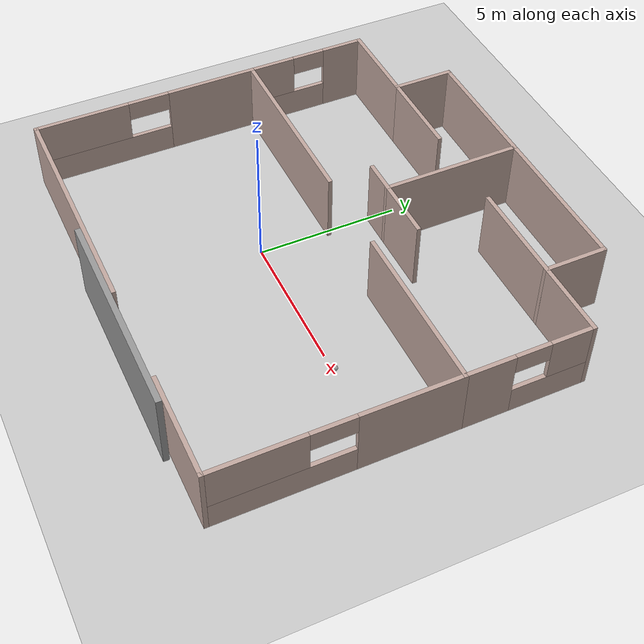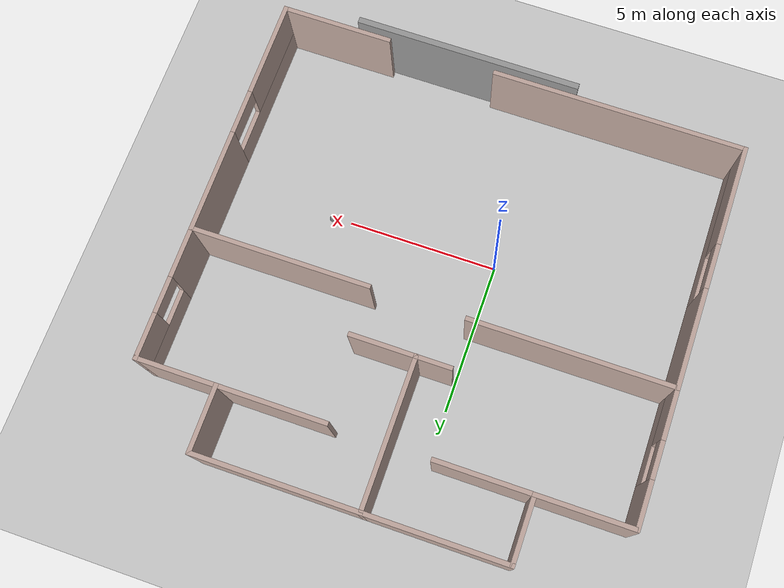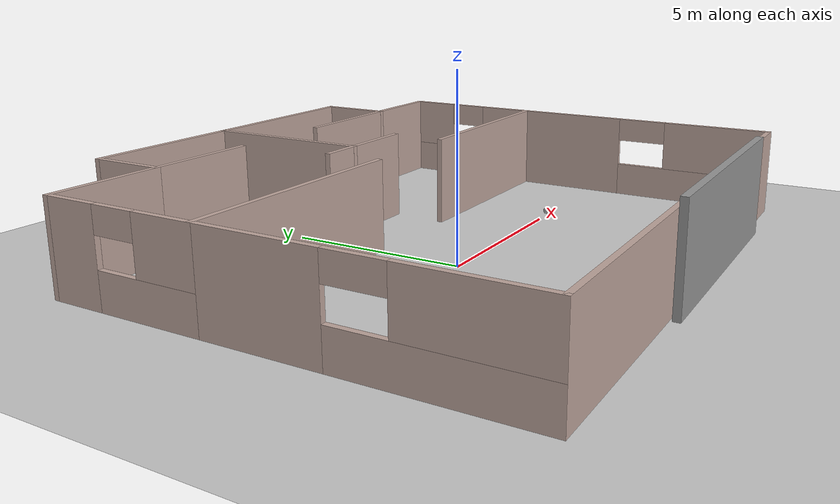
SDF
<sdf version="1.6">
 <world name="default">
  <light name="sun" type="directional">
   <pose>0 0 10 0 -0 0</pose>
   <diffuse>0.8 0.8 0.8 1</diffuse>
   <specular>0.2 0.2 0.2 1</specular>
   <attenuation>
    <range>1000</range>
    <constant>0.9</constant>
    <linear>0.01</linear>
    <quadratic>0.001</quadratic>
   </attenuation>
   <direction>-0.5 0.1 -0.9</direction>
  </light>
  <model name="ground_plane">
   <static>1</static>
   <link name="link">
    <collision name="collision">
     <geometry><plane><normal>0 0 1</normal><size>100 100</size></plane></geometry>
     <surface>
      <contact><collide_bitmask>65535</collide_bitmask></contact>
      <friction><ode><mu>100</mu><mu2>50</mu2></ode></friction>
     </surface>
    </collision>
    <visual name="visual">
     <cast_shadows>0</cast_shadows>
     <geometry><plane><normal>0 0 1</normal><size>100 100</size></plane></geometry>
     <material>
      <script><uri>file://media/materials/scripts/gazebo.material</uri><name>Gazebo/Grey</name></script>
     </material>
    </visual>
   </link>
  </model>
  <gravity>0 0 -9.8</gravity>
  <magnetic_field>6e-06 2.3e-05 -4.2e-05</magnetic_field>
  <atmosphere type="adiabatic"/>
  <physics name="default_physics" default="0" type="ode">
   <max_step_size>0.001</max_step_size>
   <real_time_factor>1</real_time_factor>
   <real_time_update_rate>1000</real_time_update_rate>
  </physics>
  <scene><ambient>0.4 0.4 0.4 1</ambient><background>0.7 0.7 0.7 1</background><shadows>1</shadows></scene>
  <spherical_coordinates>
   <surface_model>EARTH_WGS84</surface_model>
   <latitude_deg>0</latitude_deg>
   <longitude_deg>0</longitude_deg>
   <elevation>0</elevation>
   <heading_deg>0</heading_deg>
  </spherical_coordinates>
  <model name="building">
   <pose>1.35926 1.63717 0 0 -0 0</pose>
   <link name="Wall_22">
    <collision name="Wall_22_Collision">
     <geometry><box><size>5 0.15 2.5</size></box></geometry>
     <pose>0 0 1.25 0 -0 0</pose>
    </collision>
    <visual name="Wall_22_Visual">
     <pose>0 0 1.25 0 -0 0</pose>
     <geometry><box><size>5 0.15 2.5</size></box></geometry>
     <material>
      <script><uri>file://media/materials/scripts/gazebo.material</uri><name>Gazebo/Grey</name></script>
      <ambient>0.760784 0.662745 0.627451 1</ambient>
     </material>
     <meta><layer>0</layer></meta>
    </visual>
    <pose>-0.124998 4.85011 0 0 -0 1.57074</pose>
   </link>
   <link name="Wall_50">
    <collision name="Wall_50_Collision">
     <geometry><box><size>4.75 0.15 2.5</size></box></geometry>
     <pose>0 0 1.25 0 -0 0</pose>
    </collision>
    <visual name="Wall_50_Visual">
     <pose>0 0 1.25 0 -0 0</pose>
     <geometry><box><size>4.75 0.15 2.5</size></box></geometry>
     <material>
      <script><uri>file://media/materials/scripts/gazebo.material</uri><name>Gazebo/Grey</name></script>
      <ambient>0.760784 0.662745 0.627451 1</ambient>
     </material>
     <meta><layer>0</layer></meta>
    </visual>
    <pose>-2.42486 7.27489 0 0 -0 3.14159</pose>
   </link>
   <link name="Wall_51">
    <collision name="Wall_51_Collision">
     <geometry><box><size>2.25 0.15 2.5</size></box></geometry>
     <pose>0 0 1.25 0 -0 0</pose>
    </collision>
    <visual name="Wall_51_Visual">
     <pose>0 0 1.25 0 -0 0</pose>
     <geometry><box><size>2.25 0.15 2.5</size></box></geometry>
     <material>
      <script><uri>file://media/materials/scripts/gazebo.material</uri><name>Gazebo/Grey</name></script>
      <ambient>0.760784 0.662745 0.627451 1</ambient>
     </material>
     <meta><layer>0</layer></meta>
    </visual>
    <pose>-4.72486 6.22489 0 0 0 -1.5708</pose>
   </link>
   <link name="Wall_54">
    <collision name="Wall_54_Collision">
     <geometry><box><size>3.25 0.15 2.5</size></box></geometry>
     <pose>0 0 1.25 0 -0 0</pose>
    </collision>
    <visual name="Wall_54_Visual">
     <pose>0 0 1.25 0 -0 0</pose>
     <geometry><box><size>3.25 0.15 2.5</size></box></geometry>
     <material>
      <script><uri>file://media/materials/scripts/gazebo.material</uri><name>Gazebo/Grey</name></script>
      <ambient>0.760784 0.662745 0.627451 1</ambient>
     </material>
     <meta><layer>0</layer></meta>
    </visual>
    <pose>-6.27486 5.17489 0 0 -0 3.14159</pose>
   </link>
   <link name="Wall_55">
    <pose>-7.82486 2.99989 0 0 0 -1.5708</pose>
    <visual name="Wall_55_Visual_0">
     <pose>-1.4601 0 1.25 0 -0 0</pose>
     <geometry><box><size>1.5798 0.15 2.5</size></box></geometry>
     <material>
      <script><uri>file://media/materials/scripts/gazebo.material</uri><name>Gazebo/Grey</name></script>
      <ambient>0.760784 0.662745 0.627451 1</ambient>
     </material>
     <meta><layer>0</layer></meta>
    </visual>
    <collision name="Wall_55_Collision_0">
     <geometry><box><size>1.5798 0.15 2.5</size></box></geometry>
     <pose>-1.4601 0 1.25 0 -0 0</pose>
    </collision>
    <visual name="Wall_55_Visual_1">
     <pose>0.789898 0 0.5 0 -0 0</pose>
     <geometry><box><size>2.9202 0.15 1</size></box></geometry>
     <material>
      <script><uri>file://media/materials/scripts/gazebo.material</uri><name>Gazebo/Grey</name></script>
      <ambient>0.760784 0.662745 0.627451 1</ambient>
     </material>
     <meta><layer>0</layer></meta>
    </visual>
    <collision name="Wall_55_Collision_1">
     <geometry><box><size>2.9202 0.15 1</size></box></geometry>
     <pose>0.789898 0 0.5 0 -0 0</pose>
    </collision>
    <visual name="Wall_55_Visual_2">
     <pose>1.3899 0 1.75 0 -0 0</pose>
     <geometry><box><size>1.7202 0.15 1.5</size></box></geometry>
     <material>
      <script><uri>file://media/materials/scripts/gazebo.material</uri><name>Gazebo/Grey</name></script>
      <ambient>0.760784 0.662745 0.627451 1</ambient>
     </material>
     <meta><layer>0</layer></meta>
    </visual>
    <collision name="Wall_55_Collision_2">
     <geometry><box><size>1.7202 0.15 1.5</size></box></geometry>
     <pose>1.3899 0 1.75 0 -0 0</pose>
    </collision>
    <visual name="Wall_55_Visual_3">
     <pose>-0.070203 0 2.15 0 -0 0</pose>
     <geometry><box><size>1.2 0.15 0.7</size></box></geometry>
     <material>
      <script><uri>file://media/materials/scripts/gazebo.material</uri><name>Gazebo/Grey</name></script>
      <ambient>0.760784 0.662745 0.627451 1</ambient>
     </material>
     <meta><layer>0</layer></meta>
    </visual>
    <collision name="Wall_55_Collision_3">
     <geometry><box><size>1.2 0.15 0.7</size></box></geometry>
     <pose>-0.070203 0 2.15 0 -0 0</pose>
    </collision>
   </link>
   <link name="Wall_58">
    <collision name="Wall_58_Collision">
     <geometry><box><size>3.25 0.15 2.5</size></box></geometry>
     <pose>0 0 1.25 0 -0 0</pose>
    </collision>
    <visual name="Wall_58_Visual">
     <pose>0 0 1.25 0 -0 0</pose>
     <geometry><box><size>3.25 0.15 2.5</size></box></geometry>
     <material>
      <script><uri>file://media/materials/scripts/gazebo.material</uri><name>Gazebo/Grey</name></script>
      <ambient>0.760784 0.662745 0.627451 1</ambient>
     </material>
     <meta><layer>0</layer></meta>
    </visual>
    <pose>-3.17486 5.17489 0 0 -0 0</pose>
   </link>
   <link name="Wall_61">
    <collision name="Wall_61_Collision">
     <geometry><box><size>1.25 0.15 2.5</size></box></geometry>
     <pose>0 0 1.25 0 -0 0</pose>
    </collision>
    <visual name="Wall_61_Visual">
     <pose>0 0 1.25 0 -0 0</pose>
     <geometry><box><size>1.25 0.15 2.5</size></box></geometry>
     <material>
      <script><uri>file://media/materials/scripts/gazebo.material</uri><name>Gazebo/Grey</name></script>
      <ambient>0.760784 0.662745 0.627451 1</ambient>
     </material>
     <meta><layer>0</layer></meta>
    </visual>
    <pose>-0.675135 2.42533 0 0 -0 3.14159</pose>
   </link>
   <link name="Wall_68">
    <collision name="Wall_68_Collision">
     <geometry><box><size>6.74972 0.15 2.5</size></box></geometry>
     <pose>0 0 1.25 0 -0 0</pose>
    </collision>
    <visual name="Wall_68_Visual">
     <pose>0 0 1.25 0 -0 0</pose>
     <geometry><box><size>6.74972 0.15 2.5</size></box></geometry>
     <material>
      <script><uri>file://media/materials/scripts/gazebo.material</uri><name>Gazebo/Grey</name></script>
      <ambient>0.760784 0.662745 0.627451 1</ambient>
     </material>
     <meta><layer>0</layer></meta>
    </visual>
    <pose>-4.525 0.825108 0 0 -0 6.7e-05</pose>
   </link>
   <link name="Wall_70">
    <collision name="Wall_70_Collision">
     <geometry><box><size>2.25 0.15 2.5</size></box></geometry>
     <pose>0 0 1.25 0 -0 0</pose>
    </collision>
    <visual name="Wall_70_Visual">
     <pose>0 0 1.25 0 -0 0</pose>
     <geometry><box><size>2.25 0.15 2.5</size></box></geometry>
     <material>
      <script><uri>file://media/materials/scripts/gazebo.material</uri><name>Gazebo/Grey</name></script>
      <ambient>0.760784 0.662745 0.627451 1</ambient>
     </material>
     <meta><layer>0</layer></meta>
    </visual>
    <pose>0.924865 2.42533 0 0 -0 0</pose>
   </link>
   <link name="Wall_72">
    <collision name="Wall_72_Collision">
     <geometry><box><size>6 0.15 2.5</size></box></geometry>
     <pose>0 0 1.25 0 -0 0</pose>
    </collision>
    <visual name="Wall_72_Visual">
     <pose>0 0 1.25 0 -0 0</pose>
     <geometry><box><size>6 0.15 2.5</size></box></geometry>
     <material>
      <script><uri>file://media/materials/scripts/gazebo.material</uri><name>Gazebo/Grey</name></script>
      <ambient>0.760784 0.662745 0.627451 1</ambient>
     </material>
     <meta><layer>0</layer></meta>
    </visual>
    <pose>4.89986 0.825328 0 0 -0 0</pose>
   </link>
   <link name="Wall_73">
    <pose>7.82486 3.00033 0 0 -0 1.5708</pose>
    <visual name="Wall_73_Visual_0">
     <pose>-1.37508 0 1.25 0 -0 0</pose>
     <geometry><box><size>1.74984 0.15 2.5</size></box></geometry>
     <material>
      <script><uri>file://media/materials/scripts/gazebo.material</uri><name>Gazebo/Grey</name></script>
      <ambient>0.760784 0.662745 0.627451 1</ambient>
     </material>
     <meta><layer>0</layer></meta>
    </visual>
    <collision name="Wall_73_Collision_0">
     <geometry><box><size>1.74984 0.15 2.5</size></box></geometry>
     <pose>-1.37508 0 1.25 0 -0 0</pose>
    </collision>
    <visual name="Wall_73_Visual_1">
     <pose>0.874919 0 0.5 0 -0 0</pose>
     <geometry><box><size>2.75016 0.15 1</size></box></geometry>
     <material>
      <script><uri>file://media/materials/scripts/gazebo.material</uri><name>Gazebo/Grey</name></script>
      <ambient>0.760784 0.662745 0.627451 1</ambient>
     </material>
     <meta><layer>0</layer></meta>
    </visual>
    <collision name="Wall_73_Collision_1">
     <geometry><box><size>2.75016 0.15 1</size></box></geometry>
     <pose>0.874919 0 0.5 0 -0 0</pose>
    </collision>
    <visual name="Wall_73_Visual_2">
     <pose>1.47492 0 1.75 0 -0 0</pose>
     <geometry><box><size>1.55016 0.15 1.5</size></box></geometry>
     <material>
      <script><uri>file://media/materials/scripts/gazebo.material</uri><name>Gazebo/Grey</name></script>
      <ambient>0.760784 0.662745 0.627451 1</ambient>
     </material>
     <meta><layer>0</layer></meta>
    </visual>
    <collision name="Wall_73_Collision_2">
     <geometry><box><size>1.55016 0.15 1.5</size></box></geometry>
     <pose>1.47492 0 1.75 0 -0 0</pose>
    </collision>
    <visual name="Wall_73_Visual_3">
     <pose>0.099837 0 2.15 0 -0 0</pose>
     <geometry><box><size>1.2 0.15 0.7</size></box></geometry>
     <material>
      <script><uri>file://media/materials/scripts/gazebo.material</uri><name>Gazebo/Grey</name></script>
      <ambient>0.760784 0.662745 0.627451 1</ambient>
     </material>
     <meta><layer>0</layer></meta>
    </visual>
    <collision name="Wall_73_Collision_3">
     <geometry><box><size>1.2 0.15 0.7</size></box></geometry>
     <pose>0.099837 0 2.15 0 -0 0</pose>
    </collision>
   </link>
   <link name="Wall_74">
    <collision name="Wall_74_Collision">
     <geometry><box><size>6.25 0.15 2.5</size></box></geometry>
     <pose>0 0 1.25 0 -0 0</pose>
    </collision>
    <visual name="Wall_74_Visual">
     <pose>0 0 1.25 0 -0 0</pose>
     <geometry><box><size>6.25 0.15 2.5</size></box></geometry>
     <material>
      <script><uri>file://media/materials/scripts/gazebo.material</uri><name>Gazebo/Grey</name></script>
      <ambient>0.760784 0.662745 0.627451 1</ambient>
     </material>
     <meta><layer>0</layer></meta>
    </visual>
    <pose>4.77486 5.17533 0 0 -0 3.14159</pose>
   </link>
   <link name="Wall_78">
    <collision name="Wall_78_Collision">
     <geometry><box><size>5.5 0.15 2.5</size></box></geometry>
     <pose>0 0 1.25 0 -0 0</pose>
    </collision>
    <visual name="Wall_78_Visual">
     <pose>0 0 1.25 0 -0 0</pose>
     <geometry><box><size>5.5 0.15 2.5</size></box></geometry>
     <material>
      <script><uri>file://media/materials/scripts/gazebo.material</uri><name>Gazebo/Grey</name></script>
      <ambient>0.760784 0.662745 0.627451 1</ambient>
     </material>
     <meta><layer>0</layer></meta>
    </visual>
    <pose>2.55014 7.27489 0 0 -0 0</pose>
   </link>
   <link name="Wall_79">
    <collision name="Wall_79_Collision">
     <geometry><box><size>2.25 0.15 2.5</size></box></geometry>
     <pose>0 0 1.25 0 -0 0</pose>
    </collision>
    <visual name="Wall_79_Visual">
     <pose>0 0 1.25 0 -0 0</pose>
     <geometry><box><size>2.25 0.15 2.5</size></box></geometry>
     <material>
      <script><uri>file://media/materials/scripts/gazebo.material</uri><name>Gazebo/Grey</name></script>
      <ambient>0.760784 0.662745 0.627451 1</ambient>
     </material>
     <meta><layer>0</layer></meta>
    </visual>
    <pose>5.22514 6.22489 0 0 0 -1.5708</pose>
   </link>
   <link name="Wall_81">
    <pose>-7.82486 -3.22511 0 0 0 -1.5708</pose>
    <visual name="Wall_81_Visual_0">
     <pose>-2.46275 0 1.25 0 -0 0</pose>
     <geometry><box><size>3.32451 0.15 2.5</size></box></geometry>
     <material>
      <script><uri>file://media/materials/scripts/gazebo.material</uri><name>Gazebo/Grey</name></script>
      <ambient>0.760784 0.662745 0.627451 1</ambient>
     </material>
     <meta><layer>0</layer></meta>
    </visual>
    <collision name="Wall_81_Collision_0">
     <geometry><box><size>3.32451 0.15 2.5</size></box></geometry>
     <pose>-2.46275 0 1.25 0 -0 0</pose>
    </collision>
    <visual name="Wall_81_Visual_1">
     <pose>1.66225 0 0.5 0 -0 0</pose>
     <geometry><box><size>4.92549 0.15 1</size></box></geometry>
     <material>
      <script><uri>file://media/materials/scripts/gazebo.material</uri><name>Gazebo/Grey</name></script>
      <ambient>0.760784 0.662745 0.627451 1</ambient>
     </material>
     <meta><layer>0</layer></meta>
    </visual>
    <collision name="Wall_81_Collision_1">
     <geometry><box><size>4.92549 0.15 1</size></box></geometry>
     <pose>1.66225 0 0.5 0 -0 0</pose>
    </collision>
    <visual name="Wall_81_Visual_2">
     <pose>2.41225 0 1.75 0 -0 0</pose>
     <geometry><box><size>3.42549 0.15 1.5</size></box></geometry>
     <material>
      <script><uri>file://media/materials/scripts/gazebo.material</uri><name>Gazebo/Grey</name></script>
      <ambient>0.760784 0.662745 0.627451 1</ambient>
     </material>
     <meta><layer>0</layer></meta>
    </visual>
    <collision name="Wall_81_Collision_2">
     <geometry><box><size>3.42549 0.15 1.5</size></box></geometry>
     <pose>2.41225 0 1.75 0 -0 0</pose>
    </collision>
    <visual name="Wall_81_Visual_3">
     <pose>-0.050491 0 2.15 0 -0 0</pose>
     <geometry><box><size>1.5 0.15 0.7</size></box></geometry>
     <material>
      <script><uri>file://media/materials/scripts/gazebo.material</uri><name>Gazebo/Grey</name></script>
      <ambient>0.760784 0.662745 0.627451 1</ambient>
     </material>
     <meta><layer>0</layer></meta>
    </visual>
    <collision name="Wall_81_Collision_3">
     <geometry><box><size>1.5 0.15 0.7</size></box></geometry>
     <pose>-0.050491 0 2.15 0 -0 0</pose>
    </collision>
   </link>
   <link name="Wall_82">
    <collision name="Wall_82_Collision">
     <geometry><box><size>8.5 0.15 2.5</size></box></geometry>
     <pose>0 0 1.25 0 -0 0</pose>
    </collision>
    <visual name="Wall_82_Visual">
     <pose>0 0 1.25 0 -0 0</pose>
     <geometry><box><size>8.5 0.15 2.5</size></box></geometry>
     <material>
      <script><uri>file://media/materials/scripts/gazebo.material</uri><name>Gazebo/Grey</name></script>
      <ambient>0.760784 0.662745 0.627451 1</ambient>
     </material>
     <meta><layer>0</layer></meta>
    </visual>
    <pose>-3.64986 -7.27511 0 0 -0 0</pose>
   </link>
   <link name="Wall_84">
    <pose>7.82486 -3.22467 0 0 0 -1.5708</pose>
    <visual name="Wall_84_Visual_0">
     <pose>-2.3819 0 1.25 0 -0 0</pose>
     <geometry><box><size>3.4862 0.15 2.5</size></box></geometry>
     <material>
      <script><uri>file://media/materials/scripts/gazebo.material</uri><name>Gazebo/Grey</name></script>
      <ambient>0.760784 0.662745 0.627451 1</ambient>
     </material>
     <meta><layer>0</layer></meta>
    </visual>
    <collision name="Wall_84_Collision_0">
     <geometry><box><size>3.4862 0.15 2.5</size></box></geometry>
     <pose>-2.3819 0 1.25 0 -0 0</pose>
    </collision>
    <visual name="Wall_84_Visual_1">
     <pose>1.7431 0 0.5 0 -0 0</pose>
     <geometry><box><size>4.7638 0.15 1</size></box></geometry>
     <material>
      <script><uri>file://media/materials/scripts/gazebo.material</uri><name>Gazebo/Grey</name></script>
      <ambient>0.760784 0.662745 0.627451 1</ambient>
     </material>
     <meta><layer>0</layer></meta>
    </visual>
    <collision name="Wall_84_Collision_1">
     <geometry><box><size>4.7638 0.15 1</size></box></geometry>
     <pose>1.7431 0 0.5 0 -0 0</pose>
    </collision>
    <visual name="Wall_84_Visual_2">
     <pose>2.4931 0 1.75 0 -0 0</pose>
     <geometry><box><size>3.2638 0.15 1.5</size></box></geometry>
     <material>
      <script><uri>file://media/materials/scripts/gazebo.material</uri><name>Gazebo/Grey</name></script>
      <ambient>0.760784 0.662745 0.627451 1</ambient>
     </material>
     <meta><layer>0</layer></meta>
    </visual>
    <collision name="Wall_84_Collision_2">
     <geometry><box><size>3.2638 0.15 1.5</size></box></geometry>
     <pose>2.4931 0 1.75 0 -0 0</pose>
    </collision>
    <visual name="Wall_84_Visual_3">
     <pose>0.111205 0 2.15 0 -0 0</pose>
     <geometry><box><size>1.5 0.15 0.7</size></box></geometry>
     <material>
      <script><uri>file://media/materials/scripts/gazebo.material</uri><name>Gazebo/Grey</name></script>
      <ambient>0.760784 0.662745 0.627451 1</ambient>
     </material>
     <meta><layer>0</layer></meta>
    </visual>
    <collision name="Wall_84_Collision_3">
     <geometry><box><size>1.5 0.15 0.7</size></box></geometry>
     <pose>0.111205 0 2.15 0 -0 0</pose>
    </collision>
   </link>
   <link name="Wall_85">
    <collision name="Wall_85_Collision">
     <geometry><box><size>3.75 0.15 2.5</size></box></geometry>
     <pose>0 0 1.25 0 -0 0</pose>
    </collision>
    <visual name="Wall_85_Visual">
     <pose>0 0 1.25 0 -0 0</pose>
     <geometry><box><size>3.75 0.15 2.5</size></box></geometry>
     <material>
      <script><uri>file://media/materials/scripts/gazebo.material</uri><name>Gazebo/Grey</name></script>
      <ambient>0.760784 0.662745 0.627451 1</ambient>
     </material>
     <meta><layer>0</layer></meta>
    </visual>
    <pose>6.02486 -7.27467 0 0 -0 3.14159</pose>
   </link>
   <static>1</static>
  </model>
  <model name="my_ball">
   <link name="link_0">
    <inertial>
     <mass>1</mass>
     <inertia><ixx>0.1</ixx><ixy>0</ixy><ixz>0</ixz><iyy>0.1</iyy><iyz>0</iyz><izz>0.1</izz></inertia>
    </inertial>
    <visual name="visual">
     <geometry><sphere><radius>0.1</radius></sphere></geometry>
     <material>
      <lighting>1</lighting>
      <script><uri>file://media/materials/scripts/gazebo.material</uri><name>Gazebo/Grey</name></script>
      <shader type="pixel"><normal_map>__default__</normal_map></shader>
      <ambient>1 1 1 1</ambient>
      <diffuse>1 1 1 1</diffuse>
      <specular>1 1 1 1</specular>
      <emissive>1 1 1 1</emissive>
     </material>
    </visual>
    <collision name="collision">
     <geometry><sphere><radius>0.1</radius></sphere></geometry>
     <surface>
      <friction>
       <ode><mu>1</mu><mu2>1</mu2><fdir1>0 0 0</fdir1><slip1>0</slip1><slip2>0</slip2></ode>
       <torsional>
        <coefficient>1</coefficient>
        <patch_radius>0</patch_radius>
        <surface_radius>0</surface_radius>
        <use_patch_radius>1</use_patch_radius>
        <ode><slip>0</slip></ode>
       </torsional>
      </friction>
      <bounce><restitution_coefficient>0</restitution_coefficient><threshold>1e+06</threshold></bounce>
      <contact>
       <collide_without_contact>0</collide_without_contact>
       <collide_without_contact_bitmask>1</collide_without_contact_bitmask>
       <collide_bitmask>1</collide_bitmask>
       <ode>
        <soft_cfm>0</soft_cfm>
        <soft_erp>0.2</soft_erp>
        <kp>1e+13</kp>
        <kd>1</kd>
        <max_vel>0.01</max_vel>
        <min_depth>0</min_depth>
       </ode>
       <bullet>
        <split_impulse>1</split_impulse>
        <split_impulse_penetration_threshold>-0.01</split_impulse_penetration_threshold>
        <soft_cfm>0</soft_cfm>
        <soft_erp>0.2</soft_erp>
        <kp>1e+13</kp>
        <kd>1</kd>
       </bullet>
      </contact>
     </surface>
    </collision>
   </link>
   <static>0</static>
   <pose>5.65814 0.058066 0.1 0 -0 0</pose>
  </model>
  <model name="grey_wall">
   <static>1</static>
   <link name="link">
    <pose>0 0 1.4 0 -0 0</pose>
    <collision name="collision"><geometry><box><size>7.5 0.2 2.8</size></box></geometry></collision>
    <visual name="visual">
     <cast_shadows>0</cast_shadows>
     <geometry><box><size>7.5 0.2 2.8</size></box></geometry>
     <material>
      <script>
       <uri>model://grey_wall/materials/scripts</uri>
       <uri>model://grey_wall/materials/textures</uri>
       <name>vrc/grey_wall</name>
      </script>
     </material>
    </visual>
   </link>
   <pose>2.91956 -5.86909 0 0 -0 0</pose>
  </model>
 </world>
</sdf>
